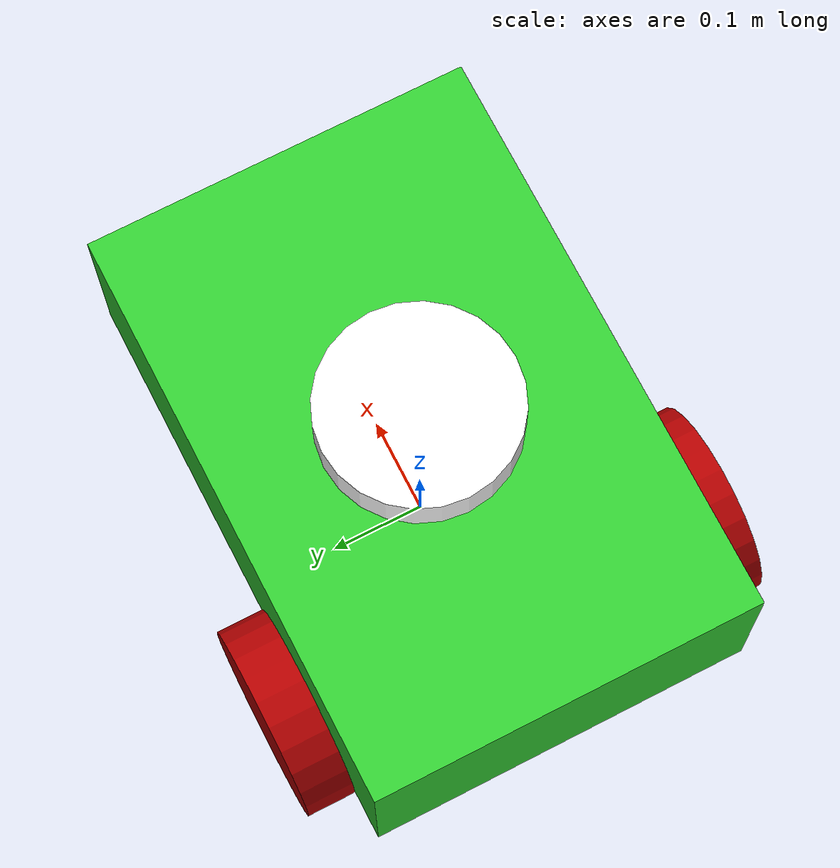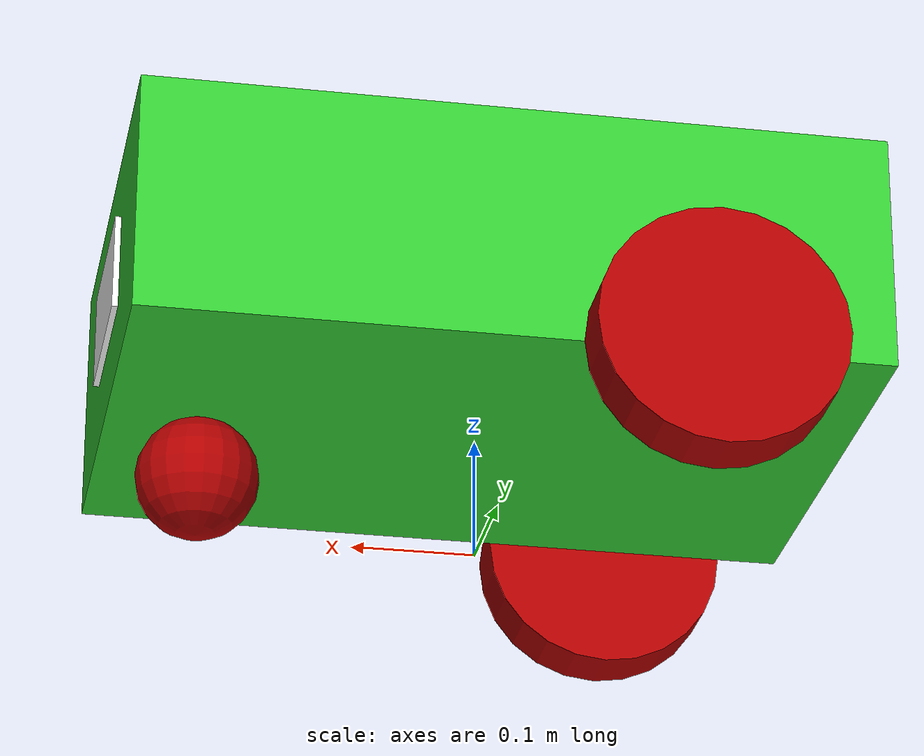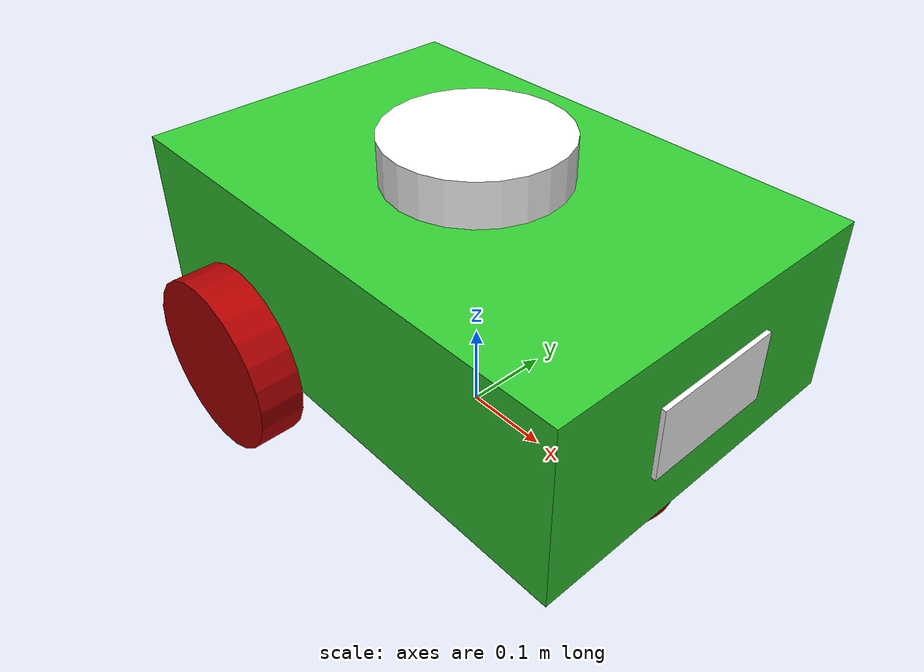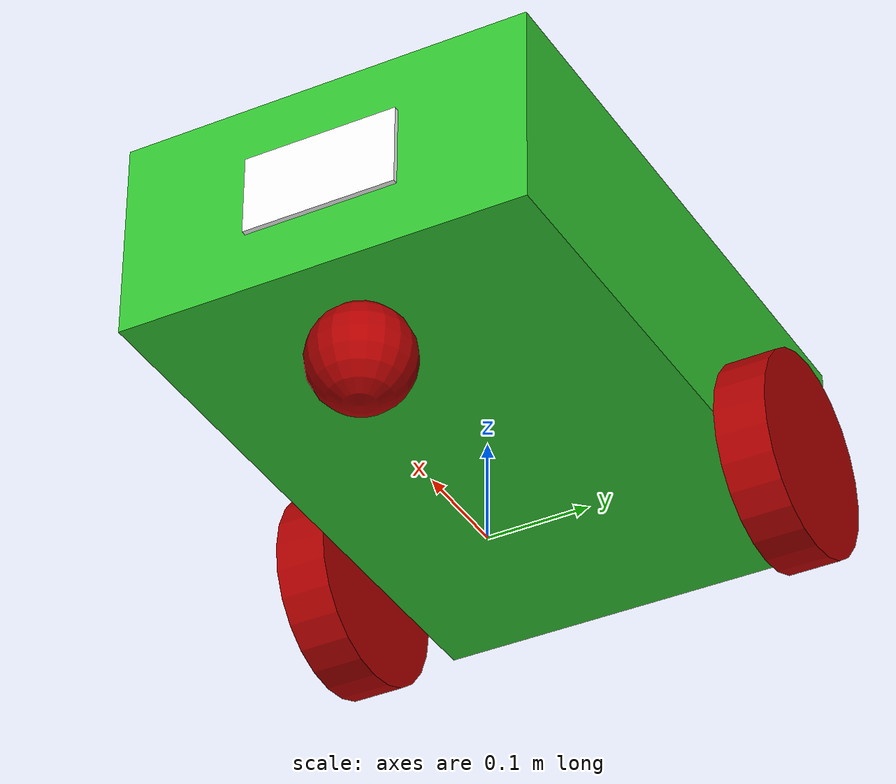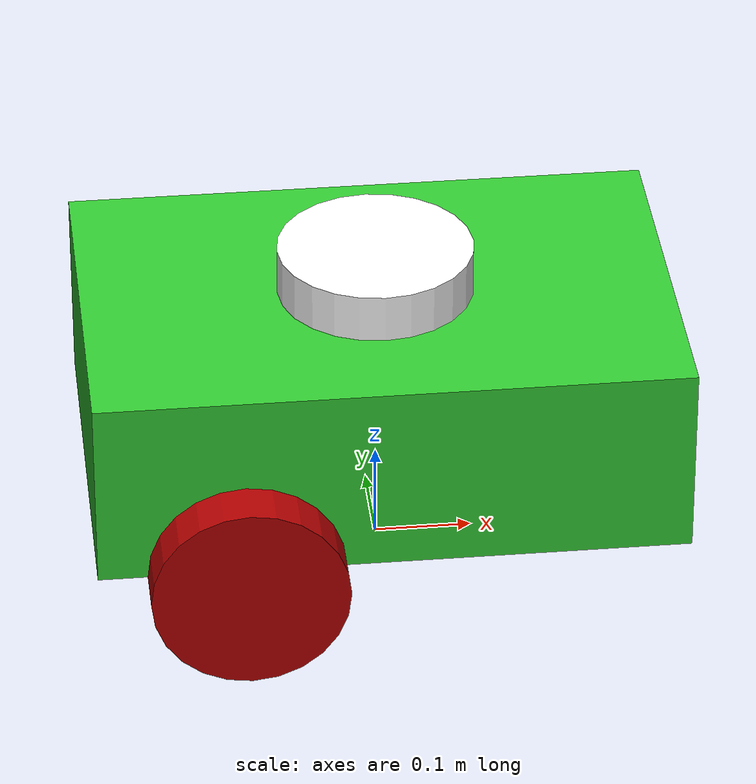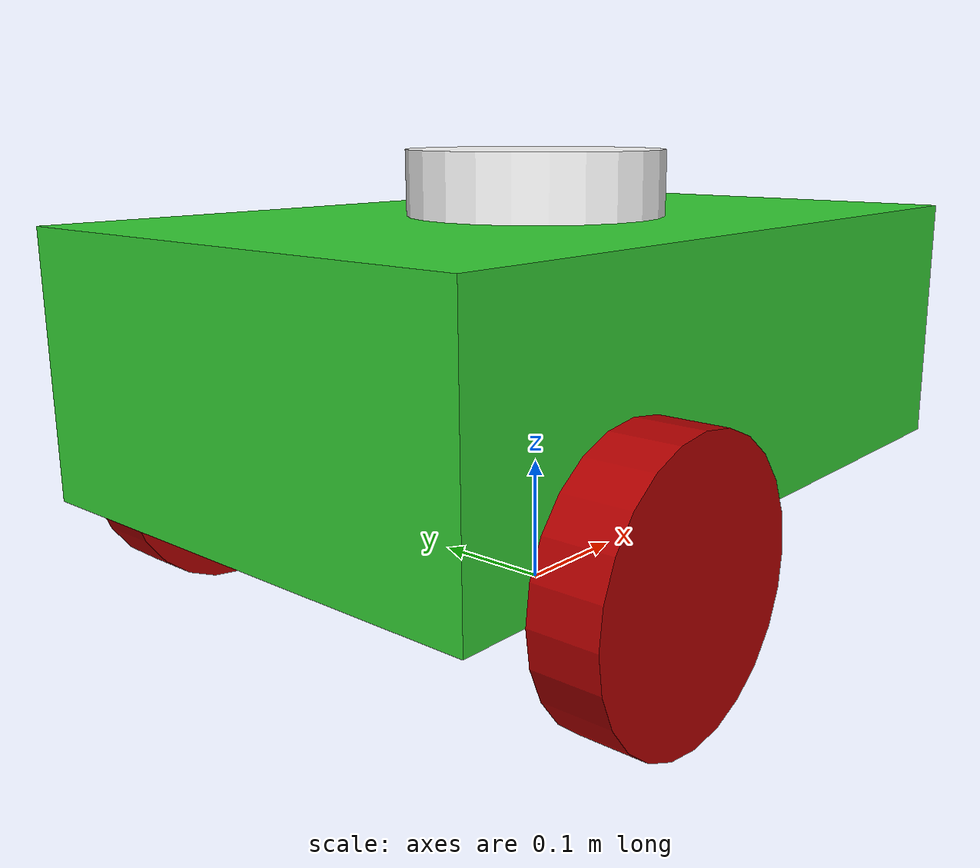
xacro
<?xml version="1.0"?>
<robot name = "my_car" xmlns:xacro="http://www.ros.org/wiki/xacro">

    <xacro:include filename = "common_properties.xacro"/>
    <xacro:include filename = "mobile_base.xacro"/>
    <xacro:include filename = "lidar.xacro"/>
    <xacro:include filename = "camera_sensor.xacro"/>
    <xacro:include filename = "mobile_base_gazebo.xacro"/>

</robot>

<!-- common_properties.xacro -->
<robot xmlns:xacro="http://www.ros.org/wiki/xacro">

    <material name = "red">
        <color rgba = "0.7 0 0 1"/>
    </material>

    <material name = "green">
        <color rgba = "0.2 0.8 0.2 1"/>
    </material>

    <material name = "white">
        <color rgba = "1 1 1 1"/>
    </material>

    <xacro:macro name = "box_inertia" params = "m x y z o_xyz o_rpy">
        <inertial>
            <mass value = "${m}"/>
            <origin xyz = "${o_xyz}" rpy = "${o_rpy}"/>
            <inertia ixx = "${(m/12) * (y*y + z*z)}" ixy = "0" ixz = "0"
                     iyy = "${(m/12) * (x*x + z*z)}" iyz = "0"
                     izz = "${(m/12) * (y*y + x*x)}" />
        </inertial>
    </xacro:macro>

    <xacro:macro name = "wheel" params = "m r h o_xyz o_rpy">
        <inertial>
            <mass value = "${m}"/>
            <origin xyz = "${o_xyz}" rpy = "${o_rpy}"/>
            <inertia ixx = "${(m/12) * (3*r*r + h*h)}" ixy = "0" ixz = "0"
                     iyy = "${(m/12) * (3*r*r + h*h)}" iyz = "0"
                     izz = "${(m * r * r)/2}" />
        </inertial>
    </xacro:macro>

     <xacro:macro name = "caster_wheel" params = "m r o_xyz o_rpy">
        <inertial>
            <mass value = "${m}"/>
            <origin xyz = "${o_xyz}" rpy = "${o_rpy}"/>
            <inertia ixx = "${(2*m*r*r)/5}" ixy = "0" ixz = "0"
                     iyy = "${(2*m*r*r)/5}" iyz = "0"
                     izz = "${(2*m*r*r)/5}" />
        </inertial>
    </xacro:macro>

</robot>

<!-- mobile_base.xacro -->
<robot xmlns:xacro = "http://www.ros.org/wiki/xacro">

    <xacro:property name = "base_len" value = "0.6"/>
    <xacro:property name = "base_width" value = "0.4"/>
    <xacro:property name = "base_height" value = "0.2"/>
    <xacro:property name = "radius" value = "0.1"/>
    <xacro:property name = "length" value = "0.05"/>
    <xacro:property name = "caster_radius" value = "0.05"/>
    <!-- write all things inside the robot tag -->

    <link name = "base_footprint"/>

    <link name = "base_link">
        <visual>
            <geometry>
                <box size = "${base_len} ${base_width} ${base_height}"/>
            </geometry>
            <origin xyz = "0 0 ${radius}" rpy = "0 0 0"/>
            <material name = "green"/>
        </visual>
        <collision>
            <geometry>
                <box size = "${base_len} ${base_width} ${base_height}"/>
            </geometry>
            <origin xyz = "0 0 ${radius}" rpy = "0 0 0"/>
        </collision>
        <xacro:box_inertia m = "5.0" x = "${base_len}" y = "${base_width}" z = "${base_height}"
                           o_xyz = "0 0 ${radius}" o_rpy = "0 0 0"/>
    </link>

    <xacro:macro name = "wheel_link" params="prefix">
        <link name ="${prefix}_wheel_link">
            <visual>
                <geometry>
                    <cylinder radius = "${radius}" length = "${length}"/>
                </geometry>
                <origin xyz = "0 0 0" rpy = "${pi / 2.0} 0 0"/>
                <material name = "red"/>
            </visual>
            <collision>
                <geometry>
                    <sphere radius = "${radius}"/>
                </geometry>
                <origin xyz = "0 0 0" rpy = "0 0 0"/>
            </collision>
            <xacro:wheel m = "1.0" r = "${radius}" h = "${length}" o_xyz = "0 0 0" o_rpy = "${pi / 2.0} 0 0"/>
        </link>
    </xacro:macro>

    <xacro:wheel_link prefix="left"/>
    <xacro:wheel_link prefix="right"/>

    <link name = "caster_wheel">
        <visual>
            <geometry>
                <sphere radius = "${caster_radius}"/>
            </geometry>
            <origin xyz = "0 0 ${-radius + caster_radius}" rpy = "0 0 0"/>
            <material name = "red"/>
        </visual>
         <collision>
                <geometry>
                    <sphere radius = "${caster_radius}"/>
                </geometry>
                <origin xyz = "0 0 ${-radius + caster_radius}" rpy = "0 0 0"/>
         </collision>
        <xacro:caster_wheel m = "0.5" r = "${caster_radius}"
                             o_xyz = "0 0 ${-radius + caster_radius}" o_rpy = "0 0 0"/>
    </link>

    <joint name = "base_joint" type = "fixed">
        <parent link = "base_footprint"/>
        <child link = "base_link"/>
        <origin xyz = "0 0 ${radius}" rpy = "0 0 0"/>
    </joint>

    <joint name = "left_wheel_joint" type = "continuous">
        <parent link = "base_link"/>
        <child link = "left_wheel_link"/>
        <origin xyz = "${- base_len / 4 } ${ base_width / 2 + length / 2 } 0" rpy = "0 0 0"/>
        <axis xyz = "0 1 0"/>
    </joint>

    <joint name = "right_wheel_joint" type = "continuous">
        <parent link = "base_link"/>
        <child link = "right_wheel_link"/>
        <origin xyz = "${- base_len / 4} ${-base_width / 2 - length / 2} 0" rpy = "0 0 0"/>
        <axis xyz = "0 1 0"/>
    </joint>

    <joint name = "base_caster_joint" type = "fixed">
        <parent link = "base_link"/>
        <child link = "caster_wheel"/>
        <origin xyz = "${base_len / 2 - base_len / 8} 0 0" rpy = "0 0 0"/>
        <axis xyz = "0 0 1"/>
    </joint>

</robot>

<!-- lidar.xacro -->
<robot xmlns:xacro="http://www.ros.org/wiki/xacro">

    <link name ="lidar_link">
        <visual>
            <geometry>
                <cylinder radius = "${radius}" length = "${length}"/>
            </geometry>
            <origin xyz = "0 0 0" rpy = "0 0 0"/>
            <material name = "white"/>
        </visual>
        <collision>
            <geometry>
                <cylinder radius = "${radius}" length = "${length}"/>
            </geometry>
            <origin xyz = "0 0 0" rpy = "0 0 0"/>
        </collision>
        <xacro:wheel m = "1.0" r = "${radius}" h = "${length}"
                             o_xyz = "0 0 0" o_rpy = "0 0 0"/>
    </link>

    <joint name = "base_lidar_joint" type = "fixed">
        <parent link = "base_link"/>
        <child link = "lidar_link"/>
        <origin xyz = "0 0 ${base_height + length / 2.0}" rpy = "0 0 0"/>
    </joint>

    <gazebo reference="lidar_link">
          <sensor name="lidar" type="gpu_lidar">
            <always_on>true</always_on>
            <visualize>true</visualize>
            <update_rate>10</update_rate>
            <topic>/scan</topic>                   <!-- Must be Same as Gazebo bridge topic name-->
            <gz_frame_id>lidar_link</gz_frame_id>
            <lidar>
            <scan>
                <horizontal>
                <samples>360</samples>
                <resolution>1.000000</resolution>
                <min_angle>-3.14159</min_angle>
                <max_angle>3.14159</max_angle>
                </horizontal>
            </scan>
            <range>
                <min>0.120000</min>
                <max>10.00</max>
                <resolution>0.01</resolution>
            </range>
            <noise>
                <type>gaussian</type>
                <mean>0.0</mean>
                <stddev>0.01</stddev>
            </noise>
            </lidar>
        </sensor>
    </gazebo>
</robot>

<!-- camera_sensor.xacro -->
<robot xmlns:xacro="http://www.ros.org/wiki/xacro">

    <xacro:property name="camera_len" value="0.01"/>
    <xacro:property name="camera_width" value="0.15"/>
    <xacro:property name="camera_height" value="0.08"/>

    <!-- Main camera link (physical box) -->
    <link name="camera_link">
        <visual>
            <geometry>
                <box size="${camera_len} ${camera_width} ${camera_height}"/>
            </geometry>
            <origin xyz="0 0 0" rpy="0 0 0"/>
            <material name="white"/>
        </visual>
        <collision>
            <geometry>
                <box size="${camera_len} ${camera_width} ${camera_height}"/>
            </geometry>
            <origin xyz="0 0 0" rpy="0 0 0"/>
        </collision>
        <xacro:box_inertia m="0.5" x="${camera_len}" y="${camera_width}" z="${camera_height}"
                            o_xyz="0 0 0" o_rpy="0 0 0"/>
    </link>

    <!-- Optical frame (for ROS camera convention) -->
    <link name="camera_link_optical"/>

    <!-- Joint from camera_link to camera_link_optical -->
    <joint name="camera_link_optical_joint" type="fixed">
        <parent link="camera_link"/>
        <child link="camera_link_optical"/>
        <!-- Rotate so that optical frame has X right, Y down, Z forward -->
        <origin xyz="0 0 0" rpy="${-pi/2} 0 ${-pi/2}"/>
    </joint>

    <!-- Attach camera_link to base_link -->
    <joint name="camera_link_joint" type="fixed">
        <parent link="base_link"/>
        <child link="camera_link"/>
        <origin xyz="${base_len / 2} 0 ${base_height / 2}" rpy="0 0 0"/>
        <axis xyz="0 1 0"/>
    </joint>

    <!-- Gazebo camera sensor (Harmonic version) -->
    <gazebo reference="camera_link">   <!-- Attach sensor to optical link -->
        <sensor name="camera" type="camera">
            <pose>0 0 0 0 0 0</pose>          <!-- relative to camera_link_optical -->
            <camera>
                <horizontal_fov>1.047</horizontal_fov>
                <image>
                    <width>640</width>
                    <height>480</height>
                    <format>R8G8B8</format>   <!-- Preferred format in Harmonic -->
                </image>
                <clip>
                    <near>0.1</near>
                    <far>100</far>
                </clip>
            </camera>
            <always_on>1</always_on>
            <update_rate>30</update_rate>
            <visualize>true</visualize>
            <topic>/camera</topic>    <!-- Must match bridge gz_topic_name -->
            <gz_frame_id>camera_link_optical</gz_frame_id>   <!-- Frame in Gazebo messages -->
        </sensor>
    </gazebo>

</robot>
